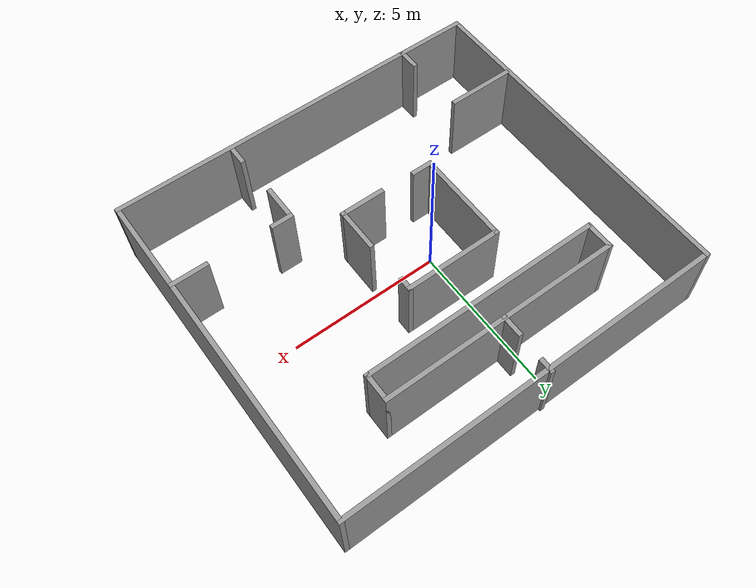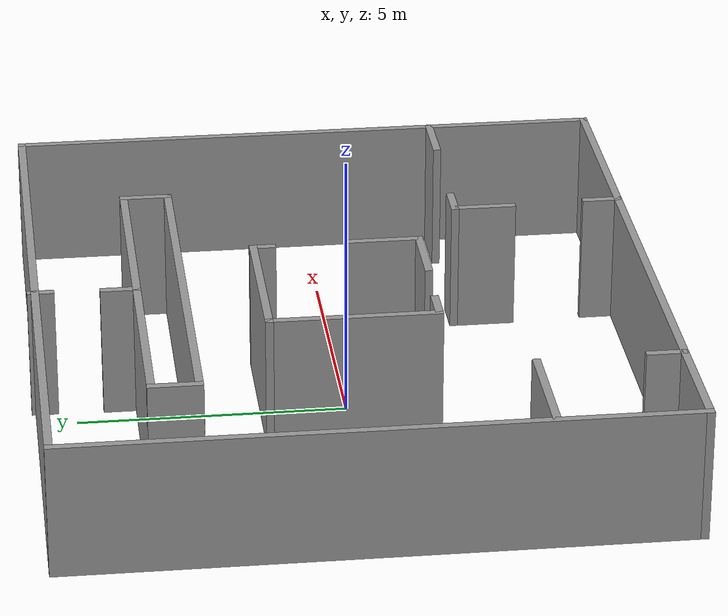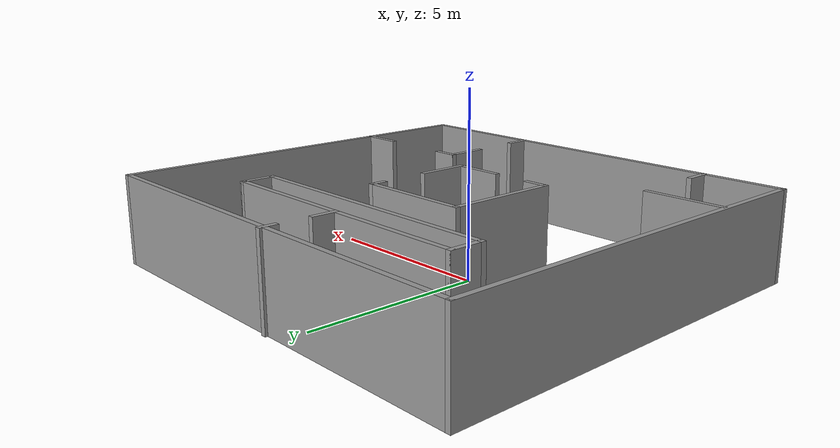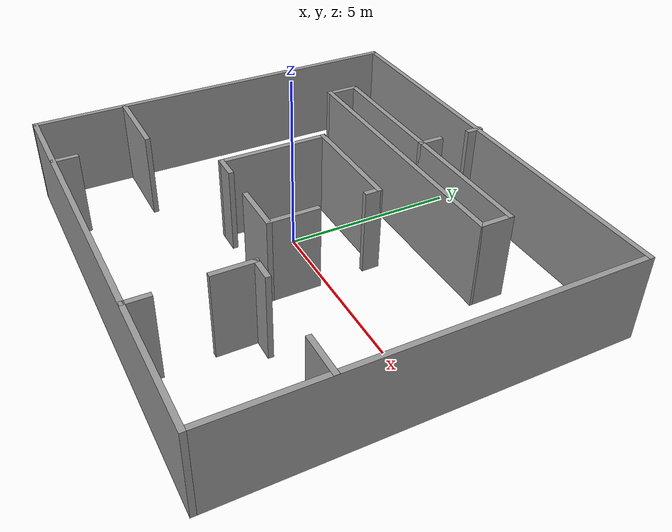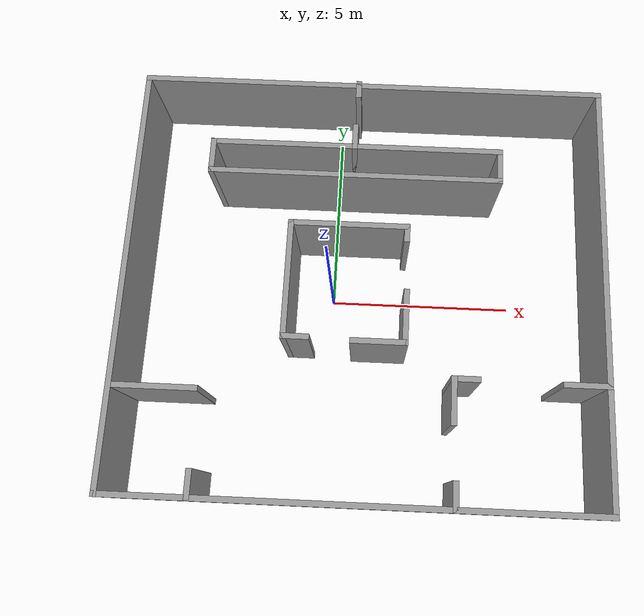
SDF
<?xml version='1.0'?>
<sdf version='1.7'>
  <model name='A1_World'>
    <pose>0.873613 0.037773 0 0 -0 0</pose>
    <link name='Wall_10'>
      <collision name='Wall_10_Collision'>
        <geometry>
          <box>
            <size>8 0.15 2.5</size>
          </box>
        </geometry>
        <pose>0 0 1.25 0 -0 0</pose>
      </collision>
      <visual name='Wall_10_Visual'>
        <pose>0 0 1.25 0 -0 0</pose>
        <geometry>
          <box>
            <size>8 0.15 2.5</size>
          </box>
        </geometry>
        <material>
          <script>
            <uri>file://media/materials/scripts/gazebo.material</uri>
            <name>Gazebo/Grey</name>
          </script>
          <ambient>1 1 1 1</ambient>
        </material>
        <meta>
          <layer>0</layer>
        </meta>
      </visual>
      <pose>-0.369811 2.92535 0 0 -0 3.14159</pose>
    </link>
    <link name='Wall_11'>
      <collision name='Wall_11_Collision'>
        <geometry>
          <box>
            <size>1 0.15 2.5</size>
          </box>
        </geometry>
        <pose>0 0 1.25 0 -0 0</pose>
      </collision>
      <visual name='Wall_11_Visual'>
        <pose>0 0 1.25 0 -0 0</pose>
        <geometry>
          <box>
            <size>1 0.15 2.5</size>
          </box>
        </geometry>
        <material>
          <script>
            <uri>file://media/materials/scripts/gazebo.material</uri>
            <name>Gazebo/Grey</name>
          </script>
          <ambient>1 1 1 1</ambient>
        </material>
        <meta>
          <layer>0</layer>
        </meta>
      </visual>
      <pose>-4.29481 3.35035 0 0 -0 1.5708</pose>
    </link>
    <link name='Wall_13'>
      <collision name='Wall_13_Collision'>
        <geometry>
          <box>
            <size>3.25 0.15 2.5</size>
          </box>
        </geometry>
        <pose>0 0 1.25 0 -0 0</pose>
      </collision>
      <visual name='Wall_13_Visual'>
        <pose>0 0 1.25 0 -0 0</pose>
        <geometry>
          <box>
            <size>3.25 0.15 2.5</size>
          </box>
        </geometry>
        <material>
          <script>
            <uri>file://media/materials/scripts/gazebo.material</uri>
            <name>Gazebo/Grey</name>
          </script>
          <ambient>1 1 1 1</ambient>
        </material>
        <meta>
          <layer>0</layer>
        </meta>
      </visual>
      <pose>-0.46246 1.48873 0 0 -0 3.14159</pose>
    </link>
    <link name='Wall_14'>
      <collision name='Wall_14_Collision'>
        <geometry>
          <box>
            <size>3.25 0.15 2.5</size>
          </box>
        </geometry>
        <pose>0 0 1.25 0 -0 0</pose>
      </collision>
      <visual name='Wall_14_Visual'>
        <pose>0 0 1.25 0 -0 0</pose>
        <geometry>
          <box>
            <size>3.25 0.15 2.5</size>
          </box>
        </geometry>
        <material>
          <script>
            <uri>file://media/materials/scripts/gazebo.material</uri>
            <name>Gazebo/Grey</name>
          </script>
          <ambient>1 1 1 1</ambient>
        </material>
        <meta>
          <layer>0</layer>
        </meta>
      </visual>
      <pose>-2.01246 -0.061273 0 0 -0 -1.5708</pose>
    </link>
    <link name='Wall_15'>
      <collision name='Wall_15_Collision'>
        <geometry>
          <box>
            <size>0.75 0.15 2.5</size>
          </box>
        </geometry>
        <pose>0 0 1.25 0 -0 0</pose>
      </collision>
      <visual name='Wall_15_Visual'>
        <pose>0 0 1.25 0 -0 0</pose>
        <geometry>
          <box>
            <size>0.75 0.15 2.5</size>
          </box>
        </geometry>
        <material>
          <script>
            <uri>file://media/materials/scripts/gazebo.material</uri>
            <name>Gazebo/Grey</name>
          </script>
          <ambient>1 1 1 1</ambient>
        </material>
        <meta>
          <layer>0</layer>
        </meta>
      </visual>
      <pose>-1.71246 -1.61127 0 0 -0 0</pose>
    </link>
    <link name='Wall_17'>
      <collision name='Wall_17_Collision'>
        <geometry>
          <box>
            <size>1.5 0.15 2.5</size>
          </box>
        </geometry>
        <pose>0 0 1.25 0 -0 0</pose>
      </collision>
      <visual name='Wall_17_Visual'>
        <pose>0 0 1.25 0 -0 0</pose>
        <geometry>
          <box>
            <size>1.5 0.15 2.5</size>
          </box>
        </geometry>
        <material>
          <script>
            <uri>file://media/materials/scripts/gazebo.material</uri>
            <name>Gazebo/Grey</name>
          </script>
          <ambient>1 1 1 1</ambient>
        </material>
        <meta>
          <layer>0</layer>
        </meta>
      </visual>
      <pose>1.12272 -0.980389 0 0 -0 -1.5708</pose>
    </link>
    <link name='Wall_18'>
      <collision name='Wall_18_Collision'>
        <geometry>
          <box>
            <size>1.5 0.15 2.5</size>
          </box>
        </geometry>
        <pose>0 0 1.25 0 -0 0</pose>
      </collision>
      <visual name='Wall_18_Visual'>
        <pose>0 0 1.25 0 -0 0</pose>
        <geometry>
          <box>
            <size>1.5 0.15 2.5</size>
          </box>
        </geometry>
        <material>
          <script>
            <uri>file://media/materials/scripts/gazebo.material</uri>
            <name>Gazebo/Grey</name>
          </script>
          <ambient>1 1 1 1</ambient>
        </material>
        <meta>
          <layer>0</layer>
        </meta>
      </visual>
      <pose>0.447719 -1.65539 0 0 -0 3.14159</pose>
    </link>
    <link name='Wall_20'>
      <collision name='Wall_20_Collision'>
        <geometry>
          <box>
            <size>0.5 0.15 2.5</size>
          </box>
        </geometry>
        <pose>0 0 1.25 0 -0 0</pose>
      </collision>
      <visual name='Wall_20_Visual'>
        <pose>0 0 1.25 0 -0 0</pose>
        <geometry>
          <box>
            <size>0.5 0.15 2.5</size>
          </box>
        </geometry>
        <material>
          <script>
            <uri>file://media/materials/scripts/gazebo.material</uri>
            <name>Gazebo/Grey</name>
          </script>
          <ambient>1 1 1 1</ambient>
        </material>
        <meta>
          <layer>0</layer>
        </meta>
      </visual>
      <pose>1.08754 1.31373 0 0 -0 -1.5708</pose>
    </link>
    <link name='Wall_22'>
      <collision name='Wall_22_Collision'>
        <geometry>
          <box>
            <size>1.25 0.15 2.5</size>
          </box>
        </geometry>
        <pose>0 0 1.25 0 -0 0</pose>
      </collision>
      <visual name='Wall_22_Visual'>
        <pose>0 0 1.25 0 -0 0</pose>
        <geometry>
          <box>
            <size>1.25 0.15 2.5</size>
          </box>
        </geometry>
        <material>
          <script>
            <uri>file://media/materials/scripts/gazebo.material</uri>
            <name>Gazebo/Grey</name>
          </script>
          <ambient>1 1 1 1</ambient>
        </material>
        <meta>
          <layer>0</layer>
        </meta>
      </visual>
      <pose>5.744 -2.55683 0 0 -0 3.14159</pose>
    </link>
    <link name='Wall_24'>
      <collision name='Wall_24_Collision'>
        <geometry>
          <box>
            <size>0.75 0.15 2.5</size>
          </box>
        </geometry>
        <pose>0 0 1.25 0 -0 0</pose>
      </collision>
      <visual name='Wall_24_Visual'>
        <pose>0 0 1.25 0 -0 0</pose>
        <geometry>
          <box>
            <size>0.75 0.15 2.5</size>
          </box>
        </geometry>
        <material>
          <script>
            <uri>file://media/materials/scripts/gazebo.material</uri>
            <name>Gazebo/Grey</name>
          </script>
          <ambient>1 1 1 1</ambient>
        </material>
        <meta>
          <layer>0</layer>
        </meta>
      </visual>
      <pose>2.68719 -2.52165 0 0 -0 3.14159</pose>
    </link>
    <link name='Wall_25'>
      <collision name='Wall_25_Collision'>
        <geometry>
          <box>
            <size>1.25 0.15 2.5</size>
          </box>
        </geometry>
        <pose>0 0 1.25 0 -0 0</pose>
      </collision>
      <visual name='Wall_25_Visual'>
        <pose>0 0 1.25 0 -0 0</pose>
        <geometry>
          <box>
            <size>1.25 0.15 2.5</size>
          </box>
        </geometry>
        <material>
          <script>
            <uri>file://media/materials/scripts/gazebo.material</uri>
            <name>Gazebo/Grey</name>
          </script>
          <ambient>1 1 1 1</ambient>
        </material>
        <meta>
          <layer>0</layer>
        </meta>
      </visual>
      <pose>2.38719 -3.07165 0 0 -0 -1.5708</pose>
    </link>
    <link name='Wall_27'>
      <collision name='Wall_27_Collision'>
        <geometry>
          <box>
            <size>0.75 0.15 2.5</size>
          </box>
        </geometry>
        <pose>0 0 1.25 0 -0 0</pose>
      </collision>
      <visual name='Wall_27_Visual'>
        <pose>0 0 1.25 0 -0 0</pose>
        <geometry>
          <box>
            <size>0.75 0.15 2.5</size>
          </box>
        </geometry>
        <material>
          <script>
            <uri>file://media/materials/scripts/gazebo.material</uri>
            <name>Gazebo/Grey</name>
          </script>
          <ambient>1 1 1 1</ambient>
        </material>
        <meta>
          <layer>0</layer>
        </meta>
      </visual>
      <pose>2.45951 -5.3897 0 0 -0 -1.5708</pose>
    </link>
    <link name='Wall_29'>
      <collision name='Wall_29_Collision'>
        <geometry>
          <box>
            <size>2.25 0.15 2.5</size>
          </box>
        </geometry>
        <pose>0 0 1.25 0 -0 0</pose>
      </collision>
      <visual name='Wall_29_Visual'>
        <pose>0 0 1.25 0 -0 0</pose>
        <geometry>
          <box>
            <size>2.25 0.15 2.5</size>
          </box>
        </geometry>
        <material>
          <script>
            <uri>file://media/materials/scripts/gazebo.material</uri>
            <name>Gazebo/Grey</name>
          </script>
          <ambient>1 1 1 1</ambient>
        </material>
        <meta>
          <layer>0</layer>
        </meta>
      </visual>
      <pose>-5.16892 -3.04933 0 0 -0 3.14159</pose>
    </link>
    <link name='Wall_3'>
      <collision name='Wall_3_Collision'>
        <geometry>
          <box>
            <size>12.75 0.15 2.5</size>
          </box>
        </geometry>
        <pose>0 0 1.25 0 -0 0</pose>
      </collision>
      <visual name='Wall_3_Visual'>
        <pose>0 0 1.25 0 -0 0</pose>
        <geometry>
          <box>
            <size>12.75 0.15 2.5</size>
          </box>
        </geometry>
        <material>
          <script>
            <uri>file://media/materials/scripts/gazebo.material</uri>
            <name>Gazebo/Grey</name>
          </script>
          <ambient>1 1 1 1</ambient>
        </material>
        <meta>
          <layer>0</layer>
        </meta>
      </visual>
      <pose>-0 5.63982 0 0 -0 0</pose>
    </link>
    <link name='Wall_31'>
      <collision name='Wall_31_Collision'>
        <geometry>
          <box>
            <size>0.75 0.15 2.5</size>
          </box>
        </geometry>
        <pose>0 0 1.25 0 -0 0</pose>
      </collision>
      <visual name='Wall_31_Visual'>
        <pose>0 0 1.25 0 -0 0</pose>
        <geometry>
          <box>
            <size>0.75 0.15 2.5</size>
          </box>
        </geometry>
        <material>
          <script>
            <uri>file://media/materials/scripts/gazebo.material</uri>
            <name>Gazebo/Grey</name>
          </script>
          <ambient>1 1 1 1</ambient>
        </material>
        <meta>
          <layer>0</layer>
        </meta>
      </visual>
      <pose>-4.04856 -5.38774 0 0 -0 1.5708</pose>
    </link>
    <link name='Wall_33'>
      <collision name='Wall_33_Collision'>
        <geometry>
          <box>
            <size>0.5 0.15 2.5</size>
          </box>
        </geometry>
        <pose>0 0 1.25 0 -0 0</pose>
      </collision>
      <visual name='Wall_33_Visual'>
        <pose>0 0 1.25 0 -0 0</pose>
        <geometry>
          <box>
            <size>0.5 0.15 2.5</size>
          </box>
        </geometry>
        <material>
          <script>
            <uri>file://media/materials/scripts/gazebo.material</uri>
            <name>Gazebo/Grey</name>
          </script>
          <ambient>1 1 1 1</ambient>
        </material>
        <meta>
          <layer>0</layer>
        </meta>
      </visual>
      <pose>-0.389968 5.53518 0 0 -0 -1.5708</pose>
    </link>
    <link name='Wall_35'>
      <collision name='Wall_35_Collision'>
        <geometry>
          <box>
            <size>0.75 0.15 2.5</size>
          </box>
        </geometry>
        <pose>0 0 1.25 0 -0 0</pose>
      </collision>
      <visual name='Wall_35_Visual'>
        <pose>0 0 1.25 0 -0 0</pose>
        <geometry>
          <box>
            <size>0.75 0.15 2.5</size>
          </box>
        </geometry>
        <material>
          <script>
            <uri>file://media/materials/scripts/gazebo.material</uri>
            <name>Gazebo/Grey</name>
          </script>
          <ambient>1 1 1 1</ambient>
        </material>
        <meta>
          <layer>0</layer>
        </meta>
      </visual>
      <pose>-0.425147 4.07535 0 0 -0 1.5708</pose>
    </link>
    <link name='Wall_4'>
      <collision name='Wall_4_Collision'>
        <geometry>
          <box>
            <size>11.5 0.15 2.5</size>
          </box>
        </geometry>
        <pose>0 0 1.25 0 -0 0</pose>
      </collision>
      <visual name='Wall_4_Visual'>
        <pose>0 0 1.25 0 -0 0</pose>
        <geometry>
          <box>
            <size>11.5 0.15 2.5</size>
          </box>
        </geometry>
        <material>
          <script>
            <uri>file://media/materials/scripts/gazebo.material</uri>
            <name>Gazebo/Grey</name>
          </script>
          <ambient>1 1 1 1</ambient>
        </material>
        <meta>
          <layer>0</layer>
        </meta>
      </visual>
      <pose>6.3 -0.035179 0 0 -0 -1.5708</pose>
    </link>
    <link name='Wall_5'>
      <collision name='Wall_5_Collision'>
        <geometry>
          <box>
            <size>12.75 0.15 2.5</size>
          </box>
        </geometry>
        <pose>0 0 1.25 0 -0 0</pose>
      </collision>
      <visual name='Wall_5_Visual'>
        <pose>0 0 1.25 0 -0 0</pose>
        <geometry>
          <box>
            <size>12.75 0.15 2.5</size>
          </box>
        </geometry>
        <material>
          <script>
            <uri>file://media/materials/scripts/gazebo.material</uri>
            <name>Gazebo/Grey</name>
          </script>
          <ambient>1 1 1 1</ambient>
        </material>
        <meta>
          <layer>0</layer>
        </meta>
      </visual>
      <pose>-0 -5.71018 0 0 -0 3.14159</pose>
    </link>
    <link name='Wall_6'>
      <collision name='Wall_6_Collision'>
        <geometry>
          <box>
            <size>11.5 0.15 2.5</size>
          </box>
        </geometry>
        <pose>0 0 1.25 0 -0 0</pose>
      </collision>
      <visual name='Wall_6_Visual'>
        <pose>0 0 1.25 0 -0 0</pose>
        <geometry>
          <box>
            <size>11.5 0.15 2.5</size>
          </box>
        </geometry>
        <material>
          <script>
            <uri>file://media/materials/scripts/gazebo.material</uri>
            <name>Gazebo/Grey</name>
          </script>
          <ambient>1 1 1 1</ambient>
        </material>
        <meta>
          <layer>0</layer>
        </meta>
      </visual>
      <pose>-6.3 -0.035179 0 0 -0 1.5708</pose>
    </link>
    <link name='Wall_8'>
      <collision name='Wall_8_Collision'>
        <geometry>
          <box>
            <size>8 0.15 2.5</size>
          </box>
        </geometry>
        <pose>0 0 1.25 0 -0 0</pose>
      </collision>
      <visual name='Wall_8_Visual'>
        <pose>0 0 1.25 0 -0 0</pose>
        <geometry>
          <box>
            <size>8 0.15 2.5</size>
          </box>
        </geometry>
        <material>
          <script>
            <uri>file://media/materials/scripts/gazebo.material</uri>
            <name>Gazebo/Grey</name>
          </script>
          <ambient>1 1 1 1</ambient>
        </material>
        <meta>
          <layer>0</layer>
        </meta>
      </visual>
      <pose>-0.369811 3.77535 0 0 -0 0</pose>
    </link>
    <link name='Wall_9'>
      <collision name='Wall_9_Collision'>
        <geometry>
          <box>
            <size>1 0.15 2.5</size>
          </box>
        </geometry>
        <pose>0 0 1.25 0 -0 0</pose>
      </collision>
      <visual name='Wall_9_Visual'>
        <pose>0 0 1.25 0 -0 0</pose>
        <geometry>
          <box>
            <size>1 0.15 2.5</size>
          </box>
        </geometry>
        <material>
          <script>
            <uri>file://media/materials/scripts/gazebo.material</uri>
            <name>Gazebo/Grey</name>
          </script>
          <ambient>1 1 1 1</ambient>
        </material>
        <meta>
          <layer>0</layer>
        </meta>
      </visual>
      <pose>3.55519 3.35035 0 0 -0 -1.5708</pose>
    </link>
    <static>1</static>
  </model>
</sdf>
